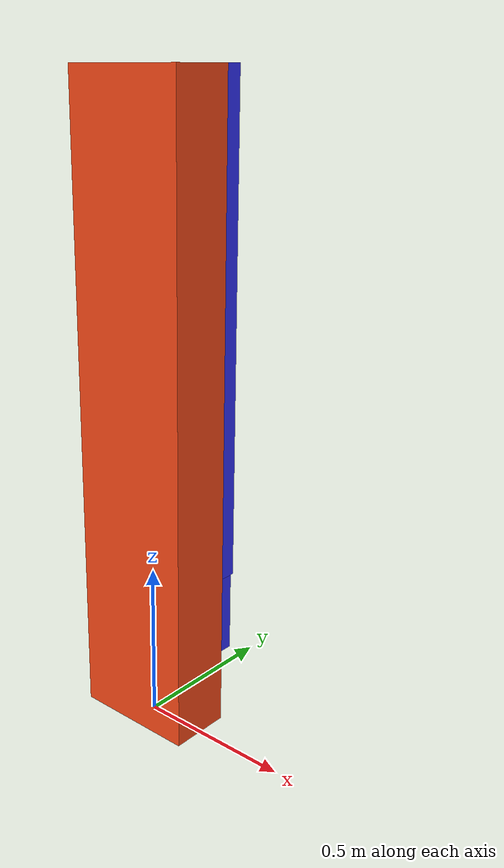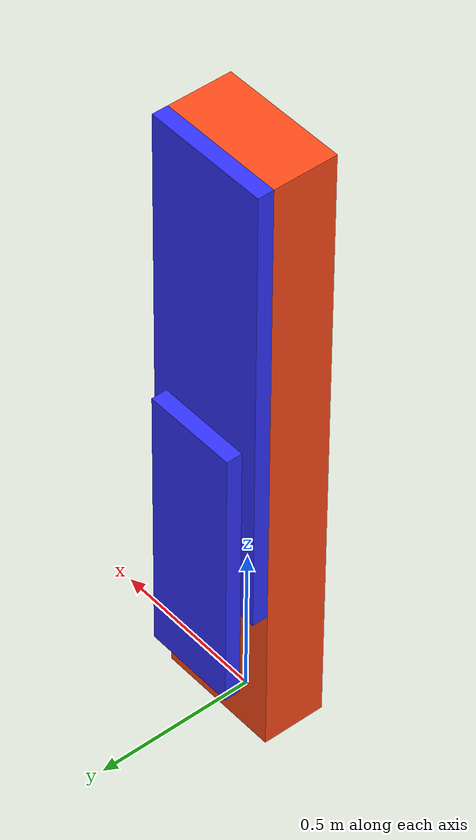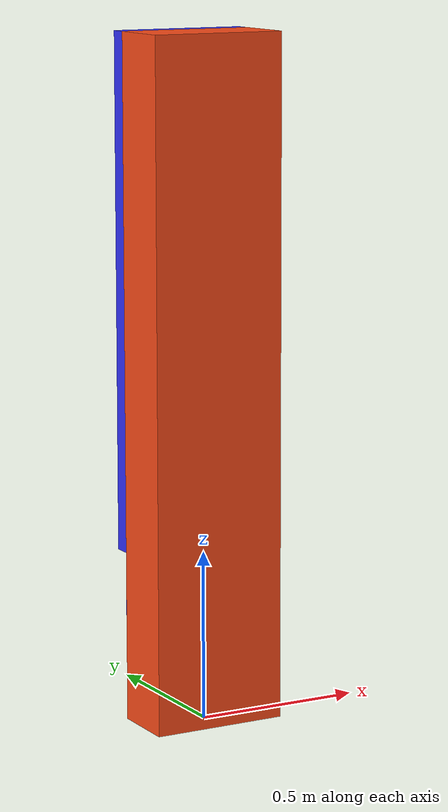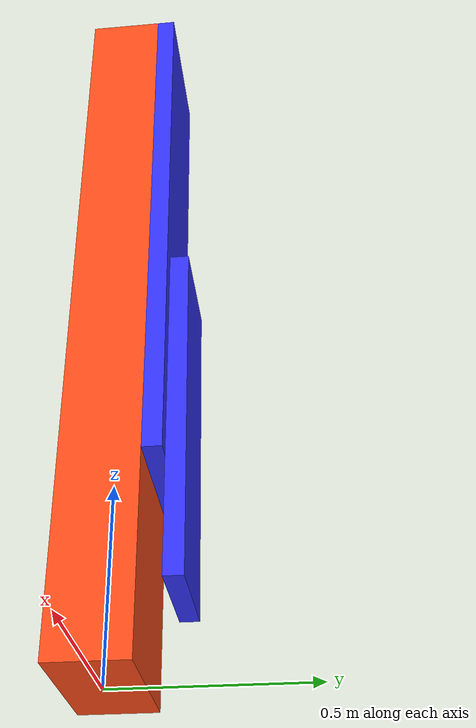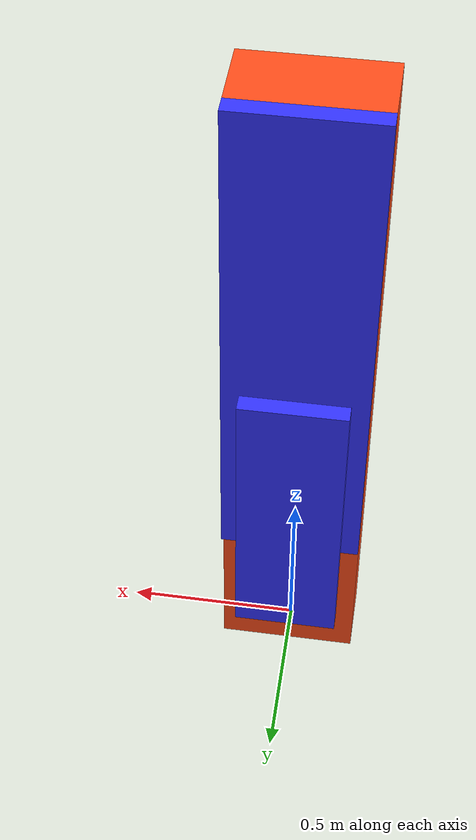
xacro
<?xml version="1.0"?>
<robot xmlns:xacro="http://www.ros.org/wiki/xacro" name = "robot">

    <xacro:include filename="include.xacro" />

    <!-- This first link called "world" is empty -->

    <link name="world"></link>

    <joint name="base_joint" type="fixed">
        <origin xyz = "0 0 1.0" rpy="0 0 0"/>
        <parent link="world"/>
        <child link="base_link"/>
    </joint>

    <link name = "base_link">
        <visual>
            <origin xyz="0 0 0" rpy="0 0 0"/>
            <geometry>
                <box size="0.4 0.2 2.0"/>
            </geometry>
            <material name = "orange"/>
        </visual>

        <collision>
            <origin xyz="0 0 0" rpy="0 0 0"/>
            <geometry>
                <box size="0.4 0.2 2.0"/>
            </geometry>
        </collision>

        <xacro:inertial_box mass="0.5" x="0.4" y="0.2" z="2.0">
            <origin xyz="0 0 0" rpy="0 0 0"/>
        </xacro:inertial_box>
    </link>

    <joint name="arm_joint1" type = "continuous">
        <origin xyz = "0 0.1 0.8" rpy="${-pi/2} 0 0"/>
        <axis xyz="0.0 0.0 1.0"/>
        <parent link="base_link"/>
        <child link="arm_link1"/>
        <dynamics damping="0.02" friction="0.02"/>
    </joint>

    <link name = "arm_link1">
        <visual>
            <origin xyz="0 0.55 0.025" rpy="${pi/2} 0 0"/>
            <geometry>
                <box size="0.4 0.05 1.5"/>
            </geometry>
            <material name = "blue"/>
        </visual>

        <collision>
            <origin xyz="0 0.55 0.025" rpy="${pi/2} 0 0"/>
            <geometry>
                <box size="0.4 0.05 1.5"/>
            </geometry>
        </collision>

        <xacro:inertial_box mass="0.1" x="0.4" y="0.05" z="1.5">
            <origin xyz="0 0.55 0.025" rpy="${pi/2} 0 0"/>
        </xacro:inertial_box>
    </link>

    <joint name="arm_joint2" type = "continuous">
        <origin xyz = "0 0.9 0.05" rpy="0 0 0"/>
        <axis xyz="0.0 0.0 1.0"/>
        <parent link="arm_link1"/>
        <child link="arm_link2"/>
        <dynamics damping="0.02" friction="0.02"/>
    </joint>

    <link name = "arm_link2">
        <visual>
            <origin xyz="0 0.25 0.025" rpy="${pi/2} 0 0"/>
            <geometry>
                <box size="0.3 0.05 0.9"/>
            </geometry>
            <material name = "blue"/>
        </visual>

        <collision>
            <origin xyz="0 0.25 0.025" rpy="${pi/2} 0 0"/>
            <geometry>
                <box size="0.3 0.05 0.9"/>
            </geometry>
        </collision>

        <xacro:inertial_box mass="0.05" x="0.3" y="0.05" z="0.9">
            <origin xyz="0 0.25 0.025" rpy="${pi/2} 0 0"/>
        </xacro:inertial_box>
    </link>

    <xacro:include filename="gazebo.xacro"/>

    <xacro:include filename="gazebo_ros2_control.xacro"/>

</robot>

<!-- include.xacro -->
<robot xmlns:xacro="http://www.ros.org/wiki/xacro">

    <material name = "white">
        <color rgba = "1 1 1 1"/>
    </material>

    <material name = "orange">
        <color rgba = "1 0.3 0.1 1"/>
    </material>

    <material name = "blue">
        <color rgba = "0.2 0.2 1 1"/>
    </material>

    <!-- Specify some standard inertial calculations https://en.wikipedia.org/wiki/List_of_moments_of_inertia -->
    <!-- These make use of xacro's mathematical functionality -->

    <xacro:macro name="inertial_sphere" params="mass radius *origin">
        <inertial>
            <xacro:insert_block name="origin"/>
            <mass value="${mass}" />
            <inertia ixx="${(2/5) * mass * (radius*radius)}" ixy="0.0" ixz="0.0"
                    iyy="${(2/5) * mass * (radius*radius)}" iyz="0.0"
                    izz="${(2/5) * mass * (radius*radius)}" />
        </inertial>
    </xacro:macro>

    <xacro:macro name="inertial_box" params="mass x y z *origin">
        <inertial>
            <xacro:insert_block name="origin"/>
            <mass value="${mass}" />
            <inertia ixx="${(1/12) * mass * (y*y+z*z)}" ixy="0.0" ixz="0.0"
                    iyy="${(1/12) * mass * (x*x+z*z)}" iyz="0.0"
                    izz="${(1/12) * mass * (x*x+y*y)}" />
        </inertial>
    </xacro:macro>

    <xacro:macro name="inertial_cylinder" params="mass length radius *origin">
        <inertial>
            <xacro:insert_block name="origin"/>
            <mass value="${mass}" />
            <inertia ixx="${(1/12) * mass * (3*radius*radius + length*length)}" ixy="0.0" ixz="0.0"
                    iyy="${(1/12) * mass * (3*radius*radius + length*length)}" iyz="0.0"
                    izz="${(1/2) * mass * (radius*radius)}" />
        </inertial>
    </xacro:macro>

</robot>
